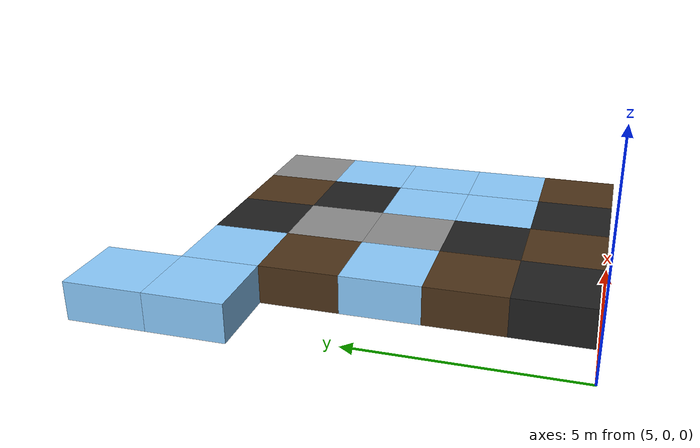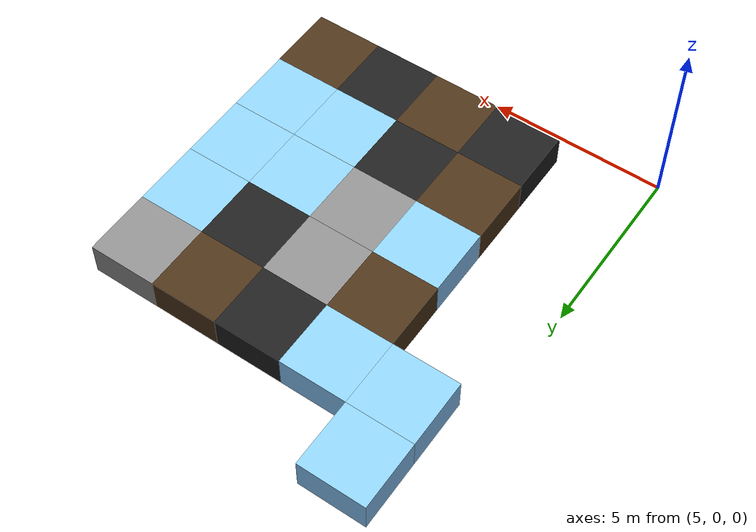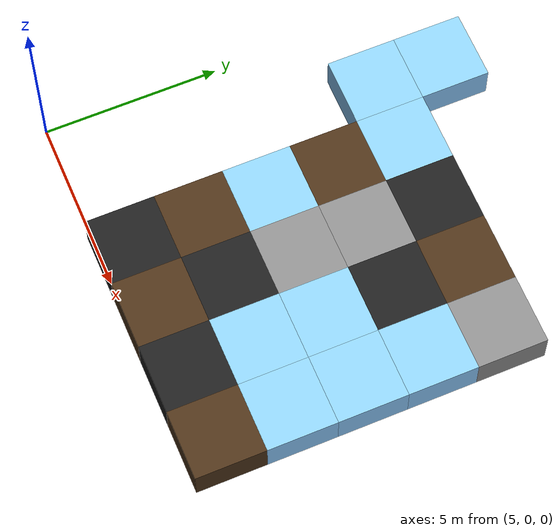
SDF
<sdf version="1.5">
 <world name="squares_example">
  <model name="tile_20_16">
   <static>true</static>
   <pose>9.000 1.000 -0.500 0 0 0</pose>
   <link name="link">
    <collision name="col">
     <geometry><box><size>2.0 2.0 1.0</size></box></geometry>
     <surface>
      <friction>
       <ode><mu>0.4</mu><mu2>0.15</mu2><fdir1>1 0 0</fdir1><slip1>0.0</slip1><slip2>0.0</slip2></ode>
       <torsional>
        <coefficient>0.03</coefficient>
        <use_patch_radius>false</use_patch_radius>
        <surface_radius>0.12</surface_radius>
        <ode><slip>0.0</slip></ode>
       </torsional>
      </friction>
      <bounce><restitution_coefficient>0.0</restitution_coefficient><threshold>0.1</threshold></bounce>
      <contact>
       <ode><kp>1000000000.0</kp><kd>1000000.0</kd><max_vel>0.01</max_vel><min_depth>0.0</min_depth></ode>
      </contact>
     </surface>
    </collision>
    <visual name="visual">
     <geometry><box><size>2.0 2.0 1.0</size></box></geometry>
     <material>
      <diffuse>0.12 0.12 0.12 1</diffuse>
      <ambient>0 0 0 0</ambient>
      <specular>0 0 0 1</specular>
      <emissive>0 0 0 1</emissive>
     </material>
    </visual>
   </link>
  </model>
  <model name="tile_21_16">
   <static>true</static>
   <pose>11.000 1.000 -0.500 0 0 0</pose>
   <link name="link">
    <collision name="col">
     <geometry><box><size>2.0 2.0 1.0</size></box></geometry>
     <surface>
      <friction>
       <ode><mu>0.6</mu><mu2>0.4</mu2><fdir1>1 0 0</fdir1><slip1>0.08</slip1><slip2>0.08</slip2></ode>
       <torsional>
        <coefficient>0.03</coefficient>
        <use_patch_radius>false</use_patch_radius>
        <surface_radius>0.12</surface_radius>
        <ode><slip>0.0</slip></ode>
       </torsional>
      </friction>
      <bounce><restitution_coefficient>0.0</restitution_coefficient><threshold>0.1</threshold></bounce>
      <contact>
       <ode><kp>1000000.0</kp><kd>10000.0</kd><max_vel>0.01</max_vel><min_depth>0.0</min_depth></ode>
      </contact>
     </surface>
    </collision>
    <visual name="visual">
     <geometry><box><size>2.0 2.0 1.0</size></box></geometry>
     <material>
      <diffuse>0.30 0.20 0.10 1</diffuse>
      <ambient>0 0 0 0</ambient>
      <specular>0 0 0 1</specular>
      <emissive>0 0 0 1</emissive>
     </material>
    </visual>
   </link>
  </model>
  <model name="tile_22_16">
   <static>true</static>
   <pose>13.000 1.000 -0.500 0 0 0</pose>
   <link name="link">
    <collision name="col">
     <geometry><box><size>2.0 2.0 1.0</size></box></geometry>
     <surface>
      <friction>
       <ode><mu>0.4</mu><mu2>0.15</mu2><fdir1>1 0 0</fdir1><slip1>0.0</slip1><slip2>0.0</slip2></ode>
       <torsional>
        <coefficient>0.03</coefficient>
        <use_patch_radius>false</use_patch_radius>
        <surface_radius>0.12</surface_radius>
        <ode><slip>0.0</slip></ode>
       </torsional>
      </friction>
      <bounce><restitution_coefficient>0.0</restitution_coefficient><threshold>0.1</threshold></bounce>
      <contact>
       <ode><kp>1000000000.0</kp><kd>1000000.0</kd><max_vel>0.01</max_vel><min_depth>0.0</min_depth></ode>
      </contact>
     </surface>
    </collision>
    <visual name="visual">
     <geometry><box><size>2.0 2.0 1.0</size></box></geometry>
     <material>
      <diffuse>0.12 0.12 0.12 1</diffuse>
      <ambient>0 0 0 0</ambient>
      <specular>0 0 0 1</specular>
      <emissive>0 0 0 1</emissive>
     </material>
    </visual>
   </link>
  </model>
  <model name="tile_23_16">
   <static>true</static>
   <pose>15.000 1.000 -0.500 0 0 0</pose>
   <link name="link">
    <collision name="col">
     <geometry><box><size>2.0 2.0 1.0</size></box></geometry>
     <surface>
      <friction>
       <ode><mu>0.6</mu><mu2>0.4</mu2><fdir1>1 0 0</fdir1><slip1>0.08</slip1><slip2>0.08</slip2></ode>
       <torsional>
        <coefficient>0.03</coefficient>
        <use_patch_radius>false</use_patch_radius>
        <surface_radius>0.12</surface_radius>
        <ode><slip>0.0</slip></ode>
       </torsional>
      </friction>
      <bounce><restitution_coefficient>0.0</restitution_coefficient><threshold>0.1</threshold></bounce>
      <contact>
       <ode><kp>1000000.0</kp><kd>10000.0</kd><max_vel>0.01</max_vel><min_depth>0.0</min_depth></ode>
      </contact>
     </surface>
    </collision>
    <visual name="visual">
     <geometry><box><size>2.0 2.0 1.0</size></box></geometry>
     <material>
      <diffuse>0.30 0.20 0.10 1</diffuse>
      <ambient>0 0 0 0</ambient>
      <specular>0 0 0 1</specular>
      <emissive>0 0 0 1</emissive>
     </material>
    </visual>
   </link>
  </model>
  <model name="tile_20_17">
   <static>true</static>
   <pose>9.000 3.000 -0.500 0 0 0</pose>
   <link name="link">
    <collision name="col">
     <geometry><box><size>2.0 2.0 1.0</size></box></geometry>
     <surface>
      <friction>
       <ode><mu>0.6</mu><mu2>0.4</mu2><fdir1>1 0 0</fdir1><slip1>0.08</slip1><slip2>0.08</slip2></ode>
       <torsional>
        <coefficient>0.03</coefficient>
        <use_patch_radius>false</use_patch_radius>
        <surface_radius>0.12</surface_radius>
        <ode><slip>0.0</slip></ode>
       </torsional>
      </friction>
      <bounce><restitution_coefficient>0.0</restitution_coefficient><threshold>0.1</threshold></bounce>
      <contact>
       <ode><kp>1000000.0</kp><kd>10000.0</kd><max_vel>0.01</max_vel><min_depth>0.0</min_depth></ode>
      </contact>
     </surface>
    </collision>
    <visual name="visual">
     <geometry><box><size>2.0 2.0 1.0</size></box></geometry>
     <material>
      <diffuse>0.30 0.20 0.10 1</diffuse>
      <ambient>0 0 0 0</ambient>
      <specular>0 0 0 1</specular>
      <emissive>0 0 0 1</emissive>
     </material>
    </visual>
   </link>
  </model>
  <model name="tile_21_17">
   <static>true</static>
   <pose>11.000 3.000 -0.500 0 0 0</pose>
   <link name="link">
    <collision name="col">
     <geometry><box><size>2.0 2.0 1.0</size></box></geometry>
     <surface>
      <friction>
       <ode><mu>0.4</mu><mu2>0.15</mu2><fdir1>1 0 0</fdir1><slip1>0.0</slip1><slip2>0.0</slip2></ode>
       <torsional>
        <coefficient>0.03</coefficient>
        <use_patch_radius>false</use_patch_radius>
        <surface_radius>0.12</surface_radius>
        <ode><slip>0.0</slip></ode>
       </torsional>
      </friction>
      <bounce><restitution_coefficient>0.0</restitution_coefficient><threshold>0.1</threshold></bounce>
      <contact>
       <ode><kp>1000000000.0</kp><kd>1000000.0</kd><max_vel>0.01</max_vel><min_depth>0.0</min_depth></ode>
      </contact>
     </surface>
    </collision>
    <visual name="visual">
     <geometry><box><size>2.0 2.0 1.0</size></box></geometry>
     <material>
      <diffuse>0.12 0.12 0.12 1</diffuse>
      <ambient>0 0 0 0</ambient>
      <specular>0 0 0 1</specular>
      <emissive>0 0 0 1</emissive>
     </material>
    </visual>
   </link>
  </model>
  <model name="tile_22_17">
   <static>true</static>
   <pose>13.000 3.000 -0.500 0 0 0</pose>
   <link name="link">
    <collision name="col">
     <geometry><box><size>2.0 2.0 1.0</size></box></geometry>
     <surface>
      <friction>
       <ode><mu>0.03</mu><mu2>0.02</mu2><fdir1>1 0 0</fdir1><slip1>0.03</slip1><slip2>0.03</slip2></ode>
       <torsional>
        <coefficient>0.005</coefficient>
        <use_patch_radius>false</use_patch_radius>
        <surface_radius>0.12</surface_radius>
        <ode><slip>0.01</slip></ode>
       </torsional>
      </friction>
      <bounce><restitution_coefficient>0.0</restitution_coefficient><threshold>0.1</threshold></bounce>
      <contact>
       <ode><kp>10000000.0</kp><kd>1000.0</kd><max_vel>0.01</max_vel><min_depth>0.0</min_depth></ode>
      </contact>
     </surface>
    </collision>
    <visual name="visual">
     <geometry><box><size>2.0 2.0 1.0</size></box></geometry>
     <material>
      <diffuse>0.55 0.80 1.00 1</diffuse>
      <ambient>0 0 0 0</ambient>
      <specular>0 0 0 1</specular>
      <emissive>0 0 0 1</emissive>
     </material>
    </visual>
   </link>
  </model>
  <model name="tile_23_17">
   <static>true</static>
   <pose>15.000 3.000 -0.500 0 0 0</pose>
   <link name="link">
    <collision name="col">
     <geometry><box><size>2.0 2.0 1.0</size></box></geometry>
     <surface>
      <friction>
       <ode><mu>0.03</mu><mu2>0.02</mu2><fdir1>1 0 0</fdir1><slip1>0.03</slip1><slip2>0.03</slip2></ode>
       <torsional>
        <coefficient>0.005</coefficient>
        <use_patch_radius>false</use_patch_radius>
        <surface_radius>0.12</surface_radius>
        <ode><slip>0.01</slip></ode>
       </torsional>
      </friction>
      <bounce><restitution_coefficient>0.0</restitution_coefficient><threshold>0.1</threshold></bounce>
      <contact>
       <ode><kp>10000000.0</kp><kd>1000.0</kd><max_vel>0.01</max_vel><min_depth>0.0</min_depth></ode>
      </contact>
     </surface>
    </collision>
    <visual name="visual">
     <geometry><box><size>2.0 2.0 1.0</size></box></geometry>
     <material>
      <diffuse>0.55 0.80 1.00 1</diffuse>
      <ambient>0 0 0 0</ambient>
      <specular>0 0 0 1</specular>
      <emissive>0 0 0 1</emissive>
     </material>
    </visual>
   </link>
  </model>
  <model name="tile_20_18">
   <static>true</static>
   <pose>9.000 5.000 -0.500 0 0 0</pose>
   <link name="link">
    <collision name="col">
     <geometry><box><size>2.0 2.0 1.0</size></box></geometry>
     <surface>
      <friction>
       <ode><mu>0.03</mu><mu2>0.02</mu2><fdir1>1 0 0</fdir1><slip1>0.03</slip1><slip2>0.03</slip2></ode>
       <torsional>
        <coefficient>0.005</coefficient>
        <use_patch_radius>false</use_patch_radius>
        <surface_radius>0.12</surface_radius>
        <ode><slip>0.01</slip></ode>
       </torsional>
      </friction>
      <bounce><restitution_coefficient>0.0</restitution_coefficient><threshold>0.1</threshold></bounce>
      <contact>
       <ode><kp>10000000.0</kp><kd>1000.0</kd><max_vel>0.01</max_vel><min_depth>0.0</min_depth></ode>
      </contact>
     </surface>
    </collision>
    <visual name="visual">
     <geometry><box><size>2.0 2.0 1.0</size></box></geometry>
     <material>
      <diffuse>0.55 0.80 1.00 1</diffuse>
      <ambient>0 0 0 0</ambient>
      <specular>0 0 0 1</specular>
      <emissive>0 0 0 1</emissive>
     </material>
    </visual>
   </link>
  </model>
  <model name="tile_21_18">
   <static>true</static>
   <pose>11.000 5.000 -0.500 0 0 0</pose>
   <link name="link">
    <collision name="col">
     <geometry><box><size>2.0 2.0 1.0</size></box></geometry>
     <surface>
      <friction>
       <ode><mu>0.8</mu><mu2>0.3</mu2><fdir1>1 0 0</fdir1><slip1>0.0</slip1><slip2>0.0</slip2></ode>
       <torsional>
        <coefficient>0.03</coefficient>
        <use_patch_radius>false</use_patch_radius>
        <surface_radius>0.12</surface_radius>
        <ode><slip>0.0</slip></ode>
       </torsional>
      </friction>
      <bounce><restitution_coefficient>0.0</restitution_coefficient><threshold>0.1</threshold></bounce>
      <contact>
       <ode><kp>10000000000.0</kp><kd>10000000.0</kd><max_vel>0.01</max_vel><min_depth>0.0</min_depth></ode>
      </contact>
     </surface>
    </collision>
    <visual name="visual">
     <geometry><box><size>2.0 2.0 1.0</size></box></geometry>
     <material>
      <diffuse>0.55 0.55 0.55 1</diffuse>
      <ambient>0 0 0 0</ambient>
      <specular>0 0 0 1</specular>
      <emissive>0 0 0 1</emissive>
     </material>
    </visual>
   </link>
  </model>
  <model name="tile_22_18">
   <static>true</static>
   <pose>13.000 5.000 -0.500 0 0 0</pose>
   <link name="link">
    <collision name="col">
     <geometry><box><size>2.0 2.0 1.0</size></box></geometry>
     <surface>
      <friction>
       <ode><mu>0.03</mu><mu2>0.02</mu2><fdir1>1 0 0</fdir1><slip1>0.03</slip1><slip2>0.03</slip2></ode>
       <torsional>
        <coefficient>0.005</coefficient>
        <use_patch_radius>false</use_patch_radius>
        <surface_radius>0.12</surface_radius>
        <ode><slip>0.01</slip></ode>
       </torsional>
      </friction>
      <bounce><restitution_coefficient>0.0</restitution_coefficient><threshold>0.1</threshold></bounce>
      <contact>
       <ode><kp>10000000.0</kp><kd>1000.0</kd><max_vel>0.01</max_vel><min_depth>0.0</min_depth></ode>
      </contact>
     </surface>
    </collision>
    <visual name="visual">
     <geometry><box><size>2.0 2.0 1.0</size></box></geometry>
     <material>
      <diffuse>0.55 0.80 1.00 1</diffuse>
      <ambient>0 0 0 0</ambient>
      <specular>0 0 0 1</specular>
      <emissive>0 0 0 1</emissive>
     </material>
    </visual>
   </link>
  </model>
  <model name="tile_23_18">
   <static>true</static>
   <pose>15.000 5.000 -0.500 0 0 0</pose>
   <link name="link">
    <collision name="col">
     <geometry><box><size>2.0 2.0 1.0</size></box></geometry>
     <surface>
      <friction>
       <ode><mu>0.03</mu><mu2>0.02</mu2><fdir1>1 0 0</fdir1><slip1>0.03</slip1><slip2>0.03</slip2></ode>
       <torsional>
        <coefficient>0.005</coefficient>
        <use_patch_radius>false</use_patch_radius>
        <surface_radius>0.12</surface_radius>
        <ode><slip>0.01</slip></ode>
       </torsional>
      </friction>
      <bounce><restitution_coefficient>0.0</restitution_coefficient><threshold>0.1</threshold></bounce>
      <contact>
       <ode><kp>10000000.0</kp><kd>1000.0</kd><max_vel>0.01</max_vel><min_depth>0.0</min_depth></ode>
      </contact>
     </surface>
    </collision>
    <visual name="visual">
     <geometry><box><size>2.0 2.0 1.0</size></box></geometry>
     <material>
      <diffuse>0.55 0.80 1.00 1</diffuse>
      <ambient>0 0 0 0</ambient>
      <specular>0 0 0 1</specular>
      <emissive>0 0 0 1</emissive>
     </material>
    </visual>
   </link>
  </model>
  <model name="tile_20_19">
   <static>true</static>
   <pose>9.000 7.000 -0.500 0 0 0</pose>
   <link name="link">
    <collision name="col">
     <geometry><box><size>2.0 2.0 1.0</size></box></geometry>
     <surface>
      <friction>
       <ode><mu>0.6</mu><mu2>0.4</mu2><fdir1>1 0 0</fdir1><slip1>0.08</slip1><slip2>0.08</slip2></ode>
       <torsional>
        <coefficient>0.03</coefficient>
        <use_patch_radius>false</use_patch_radius>
        <surface_radius>0.12</surface_radius>
        <ode><slip>0.0</slip></ode>
       </torsional>
      </friction>
      <bounce><restitution_coefficient>0.0</restitution_coefficient><threshold>0.1</threshold></bounce>
      <contact>
       <ode><kp>1000000.0</kp><kd>10000.0</kd><max_vel>0.01</max_vel><min_depth>0.0</min_depth></ode>
      </contact>
     </surface>
    </collision>
    <visual name="visual">
     <geometry><box><size>2.0 2.0 1.0</size></box></geometry>
     <material>
      <diffuse>0.30 0.20 0.10 1</diffuse>
      <ambient>0 0 0 0</ambient>
      <specular>0 0 0 1</specular>
      <emissive>0 0 0 1</emissive>
     </material>
    </visual>
   </link>
  </model>
  <model name="tile_21_19">
   <static>true</static>
   <pose>11.000 7.000 -0.500 0 0 0</pose>
   <link name="link">
    <collision name="col">
     <geometry><box><size>2.0 2.0 1.0</size></box></geometry>
     <surface>
      <friction>
       <ode><mu>0.8</mu><mu2>0.3</mu2><fdir1>1 0 0</fdir1><slip1>0.0</slip1><slip2>0.0</slip2></ode>
       <torsional>
        <coefficient>0.03</coefficient>
        <use_patch_radius>false</use_patch_radius>
        <surface_radius>0.12</surface_radius>
        <ode><slip>0.0</slip></ode>
       </torsional>
      </friction>
      <bounce><restitution_coefficient>0.0</restitution_coefficient><threshold>0.1</threshold></bounce>
      <contact>
       <ode><kp>10000000000.0</kp><kd>10000000.0</kd><max_vel>0.01</max_vel><min_depth>0.0</min_depth></ode>
      </contact>
     </surface>
    </collision>
    <visual name="visual">
     <geometry><box><size>2.0 2.0 1.0</size></box></geometry>
     <material>
      <diffuse>0.55 0.55 0.55 1</diffuse>
      <ambient>0 0 0 0</ambient>
      <specular>0 0 0 1</specular>
      <emissive>0 0 0 1</emissive>
     </material>
    </visual>
   </link>
  </model>
  <model name="tile_22_19">
   <static>true</static>
   <pose>13.000 7.000 -0.500 0 0 0</pose>
   <link name="link">
    <collision name="col">
     <geometry><box><size>2.0 2.0 1.0</size></box></geometry>
     <surface>
      <friction>
       <ode><mu>0.4</mu><mu2>0.15</mu2><fdir1>1 0 0</fdir1><slip1>0.0</slip1><slip2>0.0</slip2></ode>
       <torsional>
        <coefficient>0.03</coefficient>
        <use_patch_radius>false</use_patch_radius>
        <surface_radius>0.12</surface_radius>
        <ode><slip>0.0</slip></ode>
       </torsional>
      </friction>
      <bounce><restitution_coefficient>0.0</restitution_coefficient><threshold>0.1</threshold></bounce>
      <contact>
       <ode><kp>1000000000.0</kp><kd>1000000.0</kd><max_vel>0.01</max_vel><min_depth>0.0</min_depth></ode>
      </contact>
     </surface>
    </collision>
    <visual name="visual">
     <geometry><box><size>2.0 2.0 1.0</size></box></geometry>
     <material>
      <diffuse>0.12 0.12 0.12 1</diffuse>
      <ambient>0 0 0 0</ambient>
      <specular>0 0 0 1</specular>
      <emissive>0 0 0 1</emissive>
     </material>
    </visual>
   </link>
  </model>
  <model name="tile_23_19">
   <static>true</static>
   <pose>15.000 7.000 -0.500 0 0 0</pose>
   <link name="link">
    <collision name="col">
     <geometry><box><size>2.0 2.0 1.0</size></box></geometry>
     <surface>
      <friction>
       <ode><mu>0.03</mu><mu2>0.02</mu2><fdir1>1 0 0</fdir1><slip1>0.03</slip1><slip2>0.03</slip2></ode>
       <torsional>
        <coefficient>0.005</coefficient>
        <use_patch_radius>false</use_patch_radius>
        <surface_radius>0.12</surface_radius>
        <ode><slip>0.01</slip></ode>
       </torsional>
      </friction>
      <bounce><restitution_coefficient>0.0</restitution_coefficient><threshold>0.1</threshold></bounce>
      <contact>
       <ode><kp>10000000.0</kp><kd>1000.0</kd><max_vel>0.01</max_vel><min_depth>0.0</min_depth></ode>
      </contact>
     </surface>
    </collision>
    <visual name="visual">
     <geometry><box><size>2.0 2.0 1.0</size></box></geometry>
     <material>
      <diffuse>0.55 0.80 1.00 1</diffuse>
      <ambient>0 0 0 0</ambient>
      <specular>0 0 0 1</specular>
      <emissive>0 0 0 1</emissive>
     </material>
    </visual>
   </link>
  </model>
  <model name="tile_19_20">
   <static>true</static>
   <pose>7.000 9.000 -0.500 0 0 0</pose>
   <link name="link">
    <collision name="col">
     <geometry><box><size>2.0 2.0 1.0</size></box></geometry>
     <surface>
      <friction>
       <ode><mu>0.03</mu><mu2>0.02</mu2><fdir1>1 0 0</fdir1><slip1>0.03</slip1><slip2>0.03</slip2></ode>
       <torsional>
        <coefficient>0.005</coefficient>
        <use_patch_radius>false</use_patch_radius>
        <surface_radius>0.12</surface_radius>
        <ode><slip>0.01</slip></ode>
       </torsional>
      </friction>
      <bounce><restitution_coefficient>0.0</restitution_coefficient><threshold>0.1</threshold></bounce>
      <contact>
       <ode><kp>10000000.0</kp><kd>1000.0</kd><max_vel>0.01</max_vel><min_depth>0.0</min_depth></ode>
      </contact>
     </surface>
    </collision>
    <visual name="visual">
     <geometry><box><size>2.0 2.0 1.0</size></box></geometry>
     <material>
      <diffuse>0.55 0.80 1.00 1</diffuse>
      <ambient>0 0 0 0</ambient>
      <specular>0 0 0 1</specular>
      <emissive>0 0 0 1</emissive>
     </material>
    </visual>
   </link>
  </model>
  <model name="tile_20_20">
   <static>true</static>
   <pose>9.000 9.000 -0.500 0 0 0</pose>
   <link name="link">
    <collision name="col">
     <geometry><box><size>2.0 2.0 1.0</size></box></geometry>
     <surface>
      <friction>
       <ode><mu>0.03</mu><mu2>0.02</mu2><fdir1>1 0 0</fdir1><slip1>0.03</slip1><slip2>0.03</slip2></ode>
       <torsional>
        <coefficient>0.005</coefficient>
        <use_patch_radius>false</use_patch_radius>
        <surface_radius>0.12</surface_radius>
        <ode><slip>0.01</slip></ode>
       </torsional>
      </friction>
      <bounce><restitution_coefficient>0.0</restitution_coefficient><threshold>0.1</threshold></bounce>
      <contact>
       <ode><kp>10000000.0</kp><kd>1000.0</kd><max_vel>0.01</max_vel><min_depth>0.0</min_depth></ode>
      </contact>
     </surface>
    </collision>
    <visual name="visual">
     <geometry><box><size>2.0 2.0 1.0</size></box></geometry>
     <material>
      <diffuse>0.55 0.80 1.00 1</diffuse>
      <ambient>0 0 0 0</ambient>
      <specular>0 0 0 1</specular>
      <emissive>0 0 0 1</emissive>
     </material>
    </visual>
   </link>
  </model>
  <model name="tile_21_20">
   <static>true</static>
   <pose>11.000 9.000 -0.500 0 0 0</pose>
   <link name="link">
    <collision name="col">
     <geometry><box><size>2.0 2.0 1.0</size></box></geometry>
     <surface>
      <friction>
       <ode><mu>0.4</mu><mu2>0.15</mu2><fdir1>1 0 0</fdir1><slip1>0.0</slip1><slip2>0.0</slip2></ode>
       <torsional>
        <coefficient>0.03</coefficient>
        <use_patch_radius>false</use_patch_radius>
        <surface_radius>0.12</surface_radius>
        <ode><slip>0.0</slip></ode>
       </torsional>
      </friction>
      <bounce><restitution_coefficient>0.0</restitution_coefficient><threshold>0.1</threshold></bounce>
      <contact>
       <ode><kp>1000000000.0</kp><kd>1000000.0</kd><max_vel>0.01</max_vel><min_depth>0.0</min_depth></ode>
      </contact>
     </surface>
    </collision>
    <visual name="visual">
     <geometry><box><size>2.0 2.0 1.0</size></box></geometry>
     <material>
      <diffuse>0.12 0.12 0.12 1</diffuse>
      <ambient>0 0 0 0</ambient>
      <specular>0 0 0 1</specular>
      <emissive>0 0 0 1</emissive>
     </material>
    </visual>
   </link>
  </model>
  <model name="tile_22_20">
   <static>true</static>
   <pose>13.000 9.000 -0.500 0 0 0</pose>
   <link name="link">
    <collision name="col">
     <geometry><box><size>2.0 2.0 1.0</size></box></geometry>
     <surface>
      <friction>
       <ode><mu>0.6</mu><mu2>0.4</mu2><fdir1>1 0 0</fdir1><slip1>0.08</slip1><slip2>0.08</slip2></ode>
       <torsional>
        <coefficient>0.03</coefficient>
        <use_patch_radius>false</use_patch_radius>
        <surface_radius>0.12</surface_radius>
        <ode><slip>0.0</slip></ode>
       </torsional>
      </friction>
      <bounce><restitution_coefficient>0.0</restitution_coefficient><threshold>0.1</threshold></bounce>
      <contact>
       <ode><kp>1000000.0</kp><kd>10000.0</kd><max_vel>0.01</max_vel><min_depth>0.0</min_depth></ode>
      </contact>
     </surface>
    </collision>
    <visual name="visual">
     <geometry><box><size>2.0 2.0 1.0</size></box></geometry>
     <material>
      <diffuse>0.30 0.20 0.10 1</diffuse>
      <ambient>0 0 0 0</ambient>
      <specular>0 0 0 1</specular>
      <emissive>0 0 0 1</emissive>
     </material>
    </visual>
   </link>
  </model>
  <model name="tile_23_20">
   <static>true</static>
   <pose>15.000 9.000 -0.500 0 0 0</pose>
   <link name="link">
    <collision name="col">
     <geometry><box><size>2.0 2.0 1.0</size></box></geometry>
     <surface>
      <friction>
       <ode><mu>0.8</mu><mu2>0.3</mu2><fdir1>1 0 0</fdir1><slip1>0.0</slip1><slip2>0.0</slip2></ode>
       <torsional>
        <coefficient>0.03</coefficient>
        <use_patch_radius>false</use_patch_radius>
        <surface_radius>0.12</surface_radius>
        <ode><slip>0.0</slip></ode>
       </torsional>
      </friction>
      <bounce><restitution_coefficient>0.0</restitution_coefficient><threshold>0.1</threshold></bounce>
      <contact>
       <ode><kp>10000000000.0</kp><kd>10000000.0</kd><max_vel>0.01</max_vel><min_depth>0.0</min_depth></ode>
      </contact>
     </surface>
    </collision>
    <visual name="visual">
     <geometry><box><size>2.0 2.0 1.0</size></box></geometry>
     <material>
      <diffuse>0.55 0.55 0.55 1</diffuse>
      <ambient>0 0 0 0</ambient>
      <specular>0 0 0 1</specular>
      <emissive>0 0 0 1</emissive>
     </material>
    </visual>
   </link>
  </model>
  <model name="tile_19_21">
   <static>true</static>
   <pose>7.000 11.000 -0.500 0 0 0</pose>
   <link name="link">
    <collision name="col">
     <geometry><box><size>2.0 2.0 1.0</size></box></geometry>
     <surface>
      <friction>
       <ode><mu>0.03</mu><mu2>0.02</mu2><fdir1>1 0 0</fdir1><slip1>0.03</slip1><slip2>0.03</slip2></ode>
       <torsional>
        <coefficient>0.005</coefficient>
        <use_patch_radius>false</use_patch_radius>
        <surface_radius>0.12</surface_radius>
        <ode><slip>0.01</slip></ode>
       </torsional>
      </friction>
      <bounce><restitution_coefficient>0.0</restitution_coefficient><threshold>0.1</threshold></bounce>
      <contact>
       <ode><kp>10000000.0</kp><kd>1000.0</kd><max_vel>0.01</max_vel><min_depth>0.0</min_depth></ode>
      </contact>
     </surface>
    </collision>
    <visual name="visual">
     <geometry><box><size>2.0 2.0 1.0</size></box></geometry>
     <material>
      <diffuse>0.55 0.80 1.00 1</diffuse>
      <ambient>0 0 0 0</ambient>
      <specular>0 0 0 1</specular>
      <emissive>0 0 0 1</emissive>
     </material>
    </visual>
   </link>
  </model>
 </world>
</sdf>
